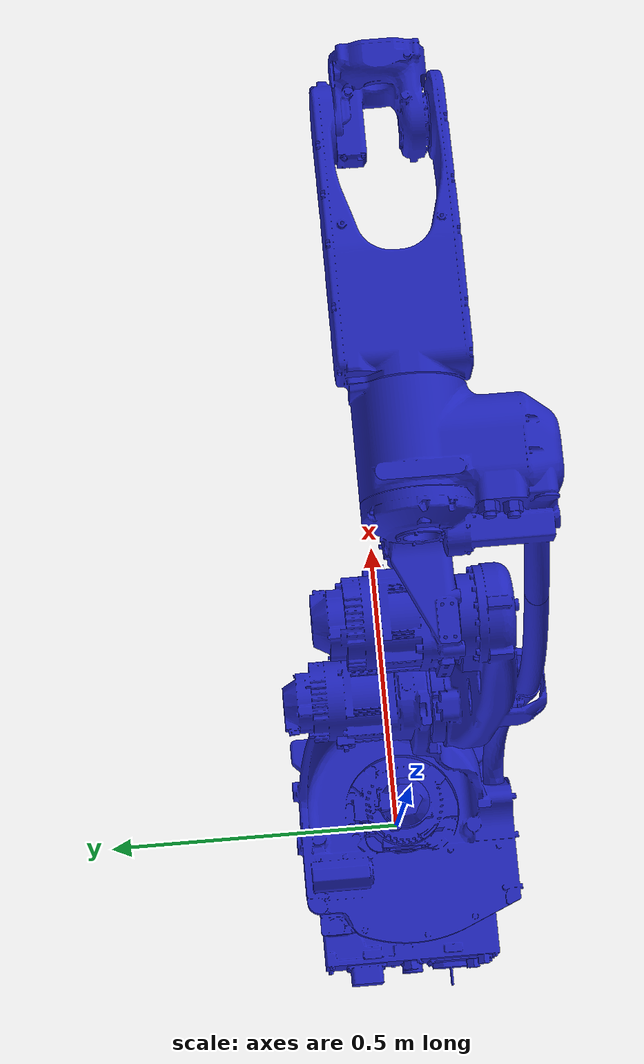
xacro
<?xml version="1.0"?>
<robot xmlns:xacro="http://www.ros.org/wiki/xacro" name="motoman_gp12">
    <xacro:arg name="initial_positions_file" default="initial_positions.yaml" />

    <!-- Import motoman_gp12 urdf file -->
    <xacro:include filename="$(find motoman_gp12_support)/urdf/gp12.urdf" />

    <!-- Import control_xacro -->
    <xacro:include filename="motoman_gp12.ros2_control.xacro" />

    <xacro:motoman_gp12_ros2_control name="FakeSystem" initial_positions_file="$(arg initial_positions_file)"/>

</robot>

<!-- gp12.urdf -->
<!-- |    This document was autogenerated by xacro from src/motoman_gp12_support/urdf/gp12.xacro | -->
<!-- |    EDITING THIS FILE BY HAND IS NOT RECOMMENDED                                 | -->
<robot name="motoman_gp12">
  <!-- link list -->
  <link name="base_link">
    <visual>
      <geometry>
        <mesh filename="package://motoman_gp12_support/meshes/visual/gp12_base_link.stl"/>
      </geometry>
      <material name="">
        <color rgba="0.12941176470588237 0.14901960784313725 0.7490196078431373 1.0"/>
      </material>
    </visual>
    <collision>
      <geometry>
        <mesh filename="package://motoman_gp12_support/meshes/collision/gp12_base_link.stl"/>
      </geometry>
    </collision>
  </link>
  <link name="link_1_s">
    <visual>
      <geometry>
        <mesh filename="package://motoman_gp12_support/meshes/visual/gp12_link_1_s.stl"/>
      </geometry>
      <material name="">
        <color rgba="0.12941176470588237 0.14901960784313725 0.7490196078431373 1.0"/>
      </material>
    </visual>
    <collision>
      <geometry>
        <mesh filename="package://motoman_gp12_support/meshes/collision/gp12_link_1_s.stl"/>
      </geometry>
    </collision>
  </link>
  <link name="link_2_l">
    <visual>
      <geometry>
        <mesh filename="package://motoman_gp12_support/meshes/visual/gp12_link_2_l.stl"/>
      </geometry>
      <material name="">
        <color rgba="0.12941176470588237 0.14901960784313725 0.7490196078431373 1.0"/>
      </material>
    </visual>
    <collision>
      <geometry>
        <mesh filename="package://motoman_gp12_support/meshes/collision/gp12_link_2_l.stl"/>
      </geometry>
    </collision>
  </link>
  <link name="link_3_u">
    <visual>
      <geometry>
        <mesh filename="package://motoman_gp12_support/meshes/visual/gp12_link_3_u.stl"/>
      </geometry>
      <material name="">
        <color rgba="0.12941176470588237 0.14901960784313725 0.7490196078431373 1.0"/>
      </material>
    </visual>
    <collision>
      <geometry>
        <mesh filename="package://motoman_gp12_support/meshes/collision/gp12_link_3_u.stl"/>
      </geometry>
    </collision>
  </link>
  <link name="link_4_r">
    <visual>
      <geometry>
        <mesh filename="package://motoman_gp12_support/meshes/visual/gp12_link_4_r.stl"/>
      </geometry>
      <material name="">
        <color rgba="0.12941176470588237 0.14901960784313725 0.7490196078431373 1.0"/>
      </material>
    </visual>
    <collision>
      <geometry>
        <mesh filename="package://motoman_gp12_support/meshes/collision/gp12_link_4_r.stl"/>
      </geometry>
    </collision>
  </link>
  <link name="link_5_b">
    <visual>
      <geometry>
        <mesh filename="package://motoman_gp12_support/meshes/visual/gp12_link_5_b.stl"/>
      </geometry>
      <material name="">
        <color rgba="0.12941176470588237 0.14901960784313725 0.7490196078431373 1.0"/>
      </material>
    </visual>
    <collision>
      <geometry>
        <mesh filename="package://motoman_gp12_support/meshes/collision/gp12_link_5_b.stl"/>
      </geometry>
    </collision>
  </link>
  <link name="link_6_t">
    <visual>
      <geometry>
        <mesh filename="package://motoman_gp12_support/meshes/visual/gp12_link_6_t.stl"/>
      </geometry>
      <material name="">
        <color rgba="0.12941176470588237 0.14901960784313725 0.7490196078431373 1.0"/>
      </material>
    </visual>
    <collision>
      <geometry>
        <mesh filename="package://motoman_gp12_support/meshes/collision/gp12_link_6_t.stl"/>
      </geometry>
    </collision>
  </link>
  <link name="tool0"/>
  <!-- end of link list -->
  <!-- joint list -->
  <joint name="joint_1_s" type="revolute">
    <parent link="base_link"/>
    <child link="link_1_s"/>
    <origin rpy="0 0 0" xyz="0 0 0.450"/>
    <axis xyz="0 0 1"/>
    <limit effort="926.10" lower="-2.9670" upper="2.9670" velocity="4.5355"/>
  </joint>
  <joint name="joint_2_l" type="revolute">
    <parent link="link_1_s"/>
    <child link="link_2_l"/>
    <origin rpy="0 0 0" xyz="0.155 0 0"/>
    <axis xyz="0 1 0"/>
    <limit effort="1029.00" lower="-1.5708" upper="2.7052" velocity="4.0132"/>
  </joint>
  <joint name="joint_3_u" type="revolute">
    <parent link="link_2_l"/>
    <child link="link_3_u"/>
    <origin rpy="0 0 0" xyz="0 0 0.614"/>
    <axis xyz="0 -1 0"/>
    <limit effort="551.25" lower="-1.4835" upper="2.6179" velocity="4.5375"/>
  </joint>
  <joint name="joint_4_r" type="revolute">
    <parent link="link_3_u"/>
    <child link="link_4_r"/>
    <origin rpy="0 0 0" xyz="0.640 0 0.200"/>
    <axis xyz="-1 0 0"/>
    <limit effort="89.96" lower="-3.4906" upper="3.4906" velocity="8.2007"/>
  </joint>
  <joint name="joint_5_b" type="revolute">
    <parent link="link_4_r"/>
    <child link="link_5_b"/>
    <origin rpy="0 0 0" xyz="0 0 0"/>
    <axis xyz="0 -1 0"/>
    <limit effort="67.03" lower="-2.6179" upper="2.6179" velocity="8.1992"/>
  </joint>
  <joint name="joint_6_t" type="revolute">
    <parent link="link_5_b"/>
    <child link="link_6_t"/>
    <origin rpy="0 0 0" xyz="0 0 0"/>
    <axis xyz="-1 0 0"/>
    <limit effort="33.30" lower="-7.9412" upper="7.9412" velocity="12.2143"/>
  </joint>
  <joint name="joint_6_t-tool0" type="fixed">
    <origin rpy="3.1415926 -1.570796 0" xyz="0.100 0 0"/>
    <parent link="link_6_t"/>
    <child link="tool0"/>
  </joint>
  <!-- end of joint list -->
  <!-- ROS base_link to Robot Manufacturer World Coordinates transform -->
  <link name="base"/>
  <joint name="base_link-base" type="fixed">
    <origin rpy="0 0 0" xyz="0 0 0.450"/>
    <parent link="base_link"/>
    <child link="base"/>
  </joint>
</robot>
